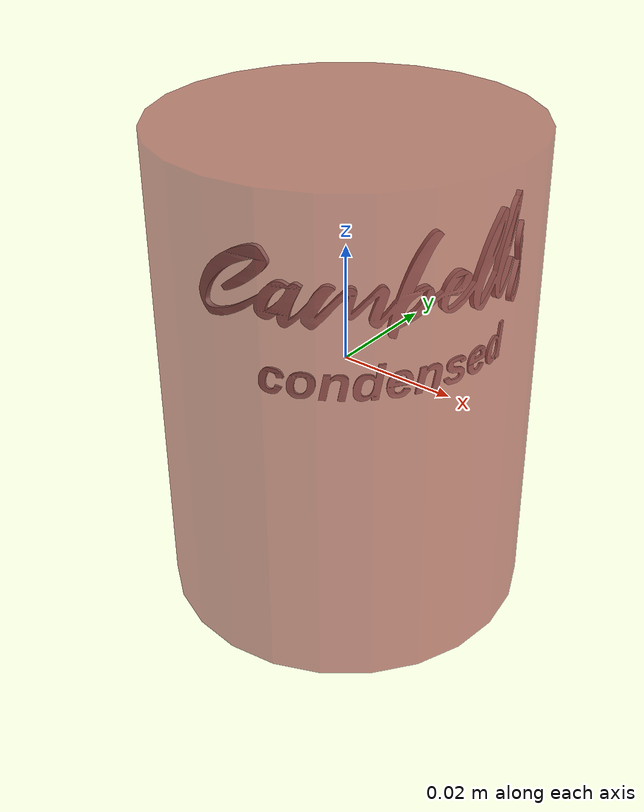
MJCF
<?xml version='1.0' encoding='utf-8'?>
<mujoco model="more_canned_food_13">
  <asset>
    <mesh file="visual/model_normalized_0.obj" name="model_normalized_0_vis" scale="0.08099999999999997 0.08099999999999997 0.08099999999999997" refquat="1.0 0.0 0.0 0.0" />
    <texture type="2d" name="image0" file="visual/image0.png" />
    <material name="barrel_texture" texture="image0" specular="0.5" shininess="0.15999998099999999" />
    <mesh file="collision/collision_mesh_collision_0.obj" name="canned_collision_mesh_0" scale="0.08099999999999997 0.08099999999999997 0.08099999999999997" refquat="1.0 0.0 0.0 0.0" />
  </asset>
  <default>
    <default class="region">
      <geom group="1" conaffinity="0" contype="0" rgba="0 1 0 0" mass="0" />
    </default>
    <default class="collision">
      <geom group="0" rgba="0.5 0 0 0.5" density="1214.545532976" />
    </default>
  </default>
  <worldbody>
    <body>
      <body name="object">
        <geom solimp="0.998 0.998 0.001" solref="0.001 1" density="121.454553298" friction="0.95 0.3 0.1" type="mesh" mesh="model_normalized_0_vis" conaffinity="0" contype="0" group="1" material="barrel_texture" />
        <geom class="region" name="reg_bbox" type="box" pos="0.0 0.0 0.0" size="0.03037499513999999 0.030375007289999995 0.04049999999999999" />
        <geom mesh="canned_collision_mesh_0" type="mesh" class="collision" />
      </body>
    </body>
  </worldbody>
</mujoco>
